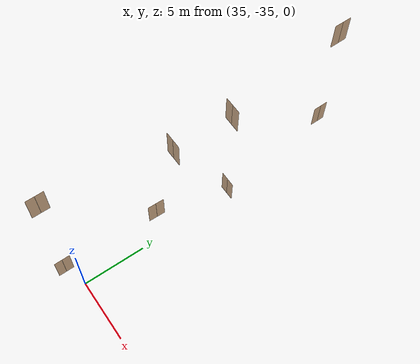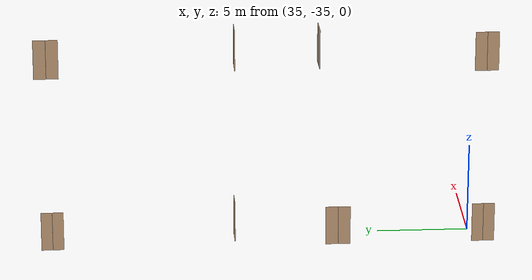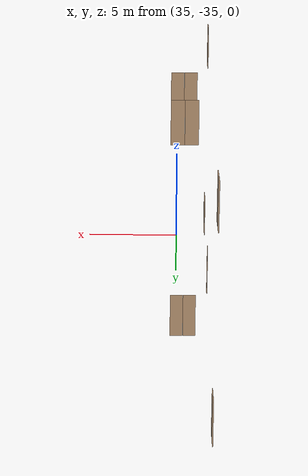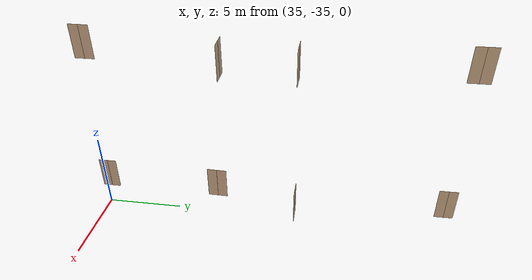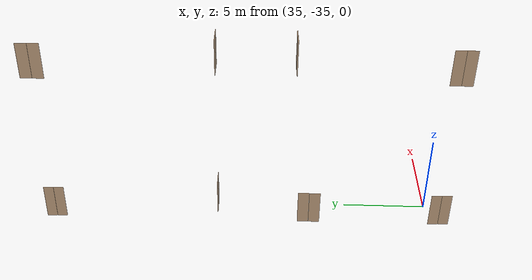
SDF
<sdf version="1.7">
 <world name="sim_world">
  <model name="door27">
   <pose>33.441785810437636 -12.070729478662258 0.0 0 0 1.587504132487737</pose>
   <link name="right">
    <pose>0.3083574587941471 0 1.11 0 0 0</pose>
    <visual name="right_visual">
     <geometry><box><size>0.6067149175882942 0.03 2.2</size></box></geometry>
     <material>
      <ambient>0.5 0.25 0 0.6</ambient>
      <diffuse>0.5 0.25 0 0.6</diffuse>
      <pbr><metal><metalness>0.0</metalness></metal></pbr>
     </material>
    </visual>
    <collision name="right_collision">
     <geometry><box><size>0.6067149175882942 0.03 2.2</size></box></geometry>
     <surface><contact><collide_bitmask>0x02</collide_bitmask></contact></surface>
    </collision>
    <inertial>
     <mass>50.0</mass>
     <inertia><ixx>20.17041666666667</ixx><iyy>21.700429130100716</iyy><izz>1.5375124634340445</izz></inertia>
    </inertial>
   </link>
   <joint name="right_joint" type="revolute">
    <parent>world</parent>
    <child>right</child>
    <axis><xyz>0 0 -1</xyz><limit><lower>0</lower><upper>1.57</upper></limit></axis>
    <pose>0.3083574587941471 0 0 0 0 0</pose>
   </joint>
   <link name="left">
    <pose>-0.3083574587941471 0 1.11 0 0 0</pose>
    <visual name="left_visual">
     <geometry><box><size>0.6067149175882942 0.03 2.2</size></box></geometry>
     <material>
      <ambient>0.5 0.25 0 0.6</ambient>
      <diffuse>0.5 0.25 0 0.6</diffuse>
      <pbr><metal><metalness>0.0</metalness></metal></pbr>
     </material>
    </visual>
    <collision name="left_collision">
     <geometry><box><size>0.6067149175882942 0.03 2.2</size></box></geometry>
     <surface><contact><collide_bitmask>0x02</collide_bitmask></contact></surface>
    </collision>
    <inertial>
     <mass>50.0</mass>
     <inertia><ixx>20.17041666666667</ixx><iyy>21.700429130100716</iyy><izz>1.5375124634340445</izz></inertia>
    </inertial>
   </link>
   <joint name="left_joint" type="revolute">
    <parent>world</parent>
    <child>left</child>
    <axis><xyz>0 0 -1</xyz><limit><lower>-1.57</lower><upper>0</upper></limit></axis>
    <pose>-0.3083574587941471 0 0 0 0 0</pose>
   </joint>
   <plugin name="register_component" filename="libregister_component.so">
    <component name="Door">
     <v_max_door>0.5</v_max_door>
     <a_max_door>0.3</a_max_door>
     <a_nom_door>0.15</a_nom_door>
     <dx_min_door>0.01</dx_min_door>
     <f_max_door>500.0</f_max_door>
     <ros_interface>true</ros_interface>
     <door name="door27" type="DoubleSwingDoor" left_joint_name="left_joint" right_joint_name="right_joint"/>
    </component>
   </plugin>
  </model>
  <model name="door29">
   <pose>34.68749171236378 -22.057737200573676 0.0 0 0 -3.131959881835861</pose>
   <link name="right">
    <pose>0.3151762883514032 0 1.11 0 0 0</pose>
    <visual name="right_visual">
     <geometry><box><size>0.6203525767028064 0.03 2.2</size></box></geometry>
     <material>
      <ambient>0.5 0.25 0 0.6</ambient>
      <diffuse>0.5 0.25 0 0.6</diffuse>
      <pbr><metal><metalness>0.0</metalness></metal></pbr>
     </material>
    </visual>
    <collision name="right_collision">
     <geometry><box><size>0.6203525767028064 0.03 2.2</size></box></geometry>
     <surface><contact><collide_bitmask>0x02</collide_bitmask></contact></surface>
    </collision>
    <inertial>
     <mass>50.0</mass>
     <inertia><ixx>20.17041666666667</ixx><iyy>21.77015549759089</iyy><izz>1.607238830924214</izz></inertia>
    </inertial>
   </link>
   <joint name="right_joint" type="revolute">
    <parent>world</parent>
    <child>right</child>
    <axis><xyz>0 0 -1</xyz><limit><lower>0</lower><upper>1.57</upper></limit></axis>
    <pose>0.3151762883514032 0 0 0 0 0</pose>
   </joint>
   <link name="left">
    <pose>-0.3151762883514032 0 1.11 0 0 0</pose>
    <visual name="left_visual">
     <geometry><box><size>0.6203525767028064 0.03 2.2</size></box></geometry>
     <material>
      <ambient>0.5 0.25 0 0.6</ambient>
      <diffuse>0.5 0.25 0 0.6</diffuse>
      <pbr><metal><metalness>0.0</metalness></metal></pbr>
     </material>
    </visual>
    <collision name="left_collision">
     <geometry><box><size>0.6203525767028064 0.03 2.2</size></box></geometry>
     <surface><contact><collide_bitmask>0x02</collide_bitmask></contact></surface>
    </collision>
    <inertial>
     <mass>50.0</mass>
     <inertia><ixx>20.17041666666667</ixx><iyy>21.77015549759089</iyy><izz>1.607238830924214</izz></inertia>
    </inertial>
   </link>
   <joint name="left_joint" type="revolute">
    <parent>world</parent>
    <child>left</child>
    <axis><xyz>0 0 -1</xyz><limit><lower>-1.57</lower><upper>0</upper></limit></axis>
    <pose>-0.3151762883514032 0 0 0 0 0</pose>
   </joint>
   <plugin name="register_component" filename="libregister_component.so">
    <component name="Door">
     <v_max_door>0.5</v_max_door>
     <a_max_door>0.3</a_max_door>
     <a_nom_door>0.15</a_nom_door>
     <dx_min_door>0.01</dx_min_door>
     <f_max_door>500.0</f_max_door>
     <ros_interface>true</ros_interface>
     <door name="door29" type="DoubleSwingDoor" left_joint_name="left_joint" right_joint_name="right_joint"/>
    </component>
   </plugin>
  </model>
  <model name="door31">
   <pose>33.37429878277079 -27.67185507202123 0.0 0 0 1.5524595629320217</pose>
   <link name="right">
    <pose>0.3390572231146725 0 1.11 0 0 0</pose>
    <visual name="right_visual">
     <geometry><box><size>0.668114446229345 0.03 2.2</size></box></geometry>
     <material>
      <ambient>0.5 0.25 0 0.6</ambient>
      <diffuse>0.5 0.25 0 0.6</diffuse>
      <pbr><metal><metalness>0.0</metalness></metal></pbr>
     </material>
    </visual>
    <collision name="right_collision">
     <geometry><box><size>0.668114446229345 0.03 2.2</size></box></geometry>
     <surface><contact><collide_bitmask>0x02</collide_bitmask></contact></surface>
    </collision>
    <inertial>
     <mass>50.0</mass>
     <inertia><ixx>20.17041666666667</ixx><iyy>22.026570471918106</iyy><izz>1.8636538052514349</izz></inertia>
    </inertial>
   </link>
   <joint name="right_joint" type="revolute">
    <parent>world</parent>
    <child>right</child>
    <axis><xyz>0 0 -1</xyz><limit><lower>0</lower><upper>1.57</upper></limit></axis>
    <pose>0.3390572231146725 0 0 0 0 0</pose>
   </joint>
   <link name="left">
    <pose>-0.3390572231146725 0 1.11 0 0 0</pose>
    <visual name="left_visual">
     <geometry><box><size>0.668114446229345 0.03 2.2</size></box></geometry>
     <material>
      <ambient>0.5 0.25 0 0.6</ambient>
      <diffuse>0.5 0.25 0 0.6</diffuse>
      <pbr><metal><metalness>0.0</metalness></metal></pbr>
     </material>
    </visual>
    <collision name="left_collision">
     <geometry><box><size>0.668114446229345 0.03 2.2</size></box></geometry>
     <surface><contact><collide_bitmask>0x02</collide_bitmask></contact></surface>
    </collision>
    <inertial>
     <mass>50.0</mass>
     <inertia><ixx>20.17041666666667</ixx><iyy>22.026570471918106</iyy><izz>1.8636538052514349</izz></inertia>
    </inertial>
   </link>
   <joint name="left_joint" type="revolute">
    <parent>world</parent>
    <child>left</child>
    <axis><xyz>0 0 -1</xyz><limit><lower>-1.57</lower><upper>0</upper></limit></axis>
    <pose>-0.3390572231146725 0 0 0 0 0</pose>
   </joint>
   <plugin name="register_component" filename="libregister_component.so">
    <component name="Door">
     <v_max_door>0.5</v_max_door>
     <a_max_door>0.3</a_max_door>
     <a_nom_door>0.15</a_nom_door>
     <dx_min_door>0.01</dx_min_door>
     <f_max_door>500.0</f_max_door>
     <ros_interface>true</ros_interface>
     <door name="door31" type="DoubleSwingDoor" left_joint_name="left_joint" right_joint_name="right_joint"/>
    </component>
   </plugin>
  </model>
  <model name="door32">
   <pose>33.37790717226811 -35.65114908101101 0.0 0 0 1.5830044547429667</pose>
   <link name="right">
    <pose>0.3116054796662517 0 1.11 0 0 0</pose>
    <visual name="right_visual">
     <geometry><box><size>0.6132109593325034 0.03 2.2</size></box></geometry>
     <material>
      <ambient>0.5 0.25 0 0.6</ambient>
      <diffuse>0.5 0.25 0 0.6</diffuse>
      <pbr><metal><metalness>0.0</metalness></metal></pbr>
     </material>
    </visual>
    <collision name="right_collision">
     <geometry><box><size>0.6132109593325034 0.03 2.2</size></box></geometry>
     <surface><contact><collide_bitmask>0x02</collide_bitmask></contact></surface>
    </collision>
    <inertial>
     <mass>50.0</mass>
     <inertia><ixx>20.17041666666667</ixx><iyy>21.733448669356207</iyy><izz>1.570532002689538</izz></inertia>
    </inertial>
   </link>
   <joint name="right_joint" type="revolute">
    <parent>world</parent>
    <child>right</child>
    <axis><xyz>0 0 -1</xyz><limit><lower>0</lower><upper>1.57</upper></limit></axis>
    <pose>0.3116054796662517 0 0 0 0 0</pose>
   </joint>
   <link name="left">
    <pose>-0.3116054796662517 0 1.11 0 0 0</pose>
    <visual name="left_visual">
     <geometry><box><size>0.6132109593325034 0.03 2.2</size></box></geometry>
     <material>
      <ambient>0.5 0.25 0 0.6</ambient>
      <diffuse>0.5 0.25 0 0.6</diffuse>
      <pbr><metal><metalness>0.0</metalness></metal></pbr>
     </material>
    </visual>
    <collision name="left_collision">
     <geometry><box><size>0.6132109593325034 0.03 2.2</size></box></geometry>
     <surface><contact><collide_bitmask>0x02</collide_bitmask></contact></surface>
    </collision>
    <inertial>
     <mass>50.0</mass>
     <inertia><ixx>20.17041666666667</ixx><iyy>21.733448669356207</iyy><izz>1.570532002689538</izz></inertia>
    </inertial>
   </link>
   <joint name="left_joint" type="revolute">
    <parent>world</parent>
    <child>left</child>
    <axis><xyz>0 0 -1</xyz><limit><lower>-1.57</lower><upper>0</upper></limit></axis>
    <pose>-0.3116054796662517 0 0 0 0 0</pose>
   </joint>
   <plugin name="register_component" filename="libregister_component.so">
    <component name="Door">
     <v_max_door>0.5</v_max_door>
     <a_max_door>0.3</a_max_door>
     <a_nom_door>0.15</a_nom_door>
     <dx_min_door>0.01</dx_min_door>
     <f_max_door>500.0</f_max_door>
     <ros_interface>true</ros_interface>
     <door name="door32" type="DoubleSwingDoor" left_joint_name="left_joint" right_joint_name="right_joint"/>
    </component>
   </plugin>
  </model>
  <model name="N1_door20">
   <pose>33.3910146342492 -11.954818514076322 10.0 0 0 1.5908324618208738</pose>
   <link name="right">
    <pose>0.3361912140977299 0 1.11 0 0 0</pose>
    <visual name="right_visual">
     <geometry><box><size>0.6623824281954598 0.03 2.2</size></box></geometry>
     <material>
      <ambient>0.5 0.25 0 0.6</ambient>
      <diffuse>0.5 0.25 0 0.6</diffuse>
      <pbr><metal><metalness>0.0</metalness></metal></pbr>
     </material>
    </visual>
    <collision name="right_collision">
     <geometry><box><size>0.6623824281954598 0.03 2.2</size></box></geometry>
     <surface><contact><collide_bitmask>0x02</collide_bitmask></contact></surface>
    </collision>
    <inertial>
     <mass>50.0</mass>
     <inertia><ixx>20.17041666666667</ixx><iyy>21.994793671592145</iyy><izz>1.831877004925473</izz></inertia>
    </inertial>
   </link>
   <joint name="right_joint" type="revolute">
    <parent>world</parent>
    <child>right</child>
    <axis><xyz>0 0 -1</xyz><limit><lower>0</lower><upper>1.57</upper></limit></axis>
    <pose>0.3361912140977299 0 0 0 0 0</pose>
   </joint>
   <link name="left">
    <pose>-0.3361912140977299 0 1.11 0 0 0</pose>
    <visual name="left_visual">
     <geometry><box><size>0.6623824281954598 0.03 2.2</size></box></geometry>
     <material>
      <ambient>0.5 0.25 0 0.6</ambient>
      <diffuse>0.5 0.25 0 0.6</diffuse>
      <pbr><metal><metalness>0.0</metalness></metal></pbr>
     </material>
    </visual>
    <collision name="left_collision">
     <geometry><box><size>0.6623824281954598 0.03 2.2</size></box></geometry>
     <surface><contact><collide_bitmask>0x02</collide_bitmask></contact></surface>
    </collision>
    <inertial>
     <mass>50.0</mass>
     <inertia><ixx>20.17041666666667</ixx><iyy>21.994793671592145</iyy><izz>1.831877004925473</izz></inertia>
    </inertial>
   </link>
   <joint name="left_joint" type="revolute">
    <parent>world</parent>
    <child>left</child>
    <axis><xyz>0 0 -1</xyz><limit><lower>-1.57</lower><upper>0</upper></limit></axis>
    <pose>-0.3361912140977299 0 0 0 0 0</pose>
   </joint>
   <plugin name="register_component" filename="libregister_component.so">
    <component name="Door">
     <v_max_door>0.5</v_max_door>
     <a_max_door>0.3</a_max_door>
     <a_nom_door>0.15</a_nom_door>
     <dx_min_door>0.01</dx_min_door>
     <f_max_door>500.0</f_max_door>
     <ros_interface>true</ros_interface>
     <door name="N1_door20" type="DoubleSwingDoor" left_joint_name="left_joint" right_joint_name="right_joint"/>
    </component>
   </plugin>
  </model>
  <model name="N1_door22">
   <pose>34.687717486322796 -22.072256795493153 10.0 0 0 -3.1389810117286547</pose>
   <link name="right">
    <pose>0.33147173419256043 0 1.11 0 0 0</pose>
    <visual name="right_visual">
     <geometry><box><size>0.6529434683851209 0.03 2.2</size></box></geometry>
     <material>
      <ambient>0.5 0.25 0 0.6</ambient>
      <diffuse>0.5 0.25 0 0.6</diffuse>
      <pbr><metal><metalness>0.0</metalness></metal></pbr>
     </material>
    </visual>
    <collision name="right_collision">
     <geometry><box><size>0.6529434683851209 0.03 2.2</size></box></geometry>
     <surface><contact><collide_bitmask>0x02</collide_bitmask></contact></surface>
    </collision>
    <inertial>
     <mass>50.0</mass>
     <inertia><ixx>20.17041666666667</ixx><iyy>21.943063220444966</iyy><izz>1.7801465537782972</izz></inertia>
    </inertial>
   </link>
   <joint name="right_joint" type="revolute">
    <parent>world</parent>
    <child>right</child>
    <axis><xyz>0 0 -1</xyz><limit><lower>0</lower><upper>1.57</upper></limit></axis>
    <pose>0.33147173419256043 0 0 0 0 0</pose>
   </joint>
   <link name="left">
    <pose>-0.33147173419256043 0 1.11 0 0 0</pose>
    <visual name="left_visual">
     <geometry><box><size>0.6529434683851209 0.03 2.2</size></box></geometry>
     <material>
      <ambient>0.5 0.25 0 0.6</ambient>
      <diffuse>0.5 0.25 0 0.6</diffuse>
      <pbr><metal><metalness>0.0</metalness></metal></pbr>
     </material>
    </visual>
    <collision name="left_collision">
     <geometry><box><size>0.6529434683851209 0.03 2.2</size></box></geometry>
     <surface><contact><collide_bitmask>0x02</collide_bitmask></contact></surface>
    </collision>
    <inertial>
     <mass>50.0</mass>
     <inertia><ixx>20.17041666666667</ixx><iyy>21.943063220444966</iyy><izz>1.7801465537782972</izz></inertia>
    </inertial>
   </link>
   <joint name="left_joint" type="revolute">
    <parent>world</parent>
    <child>left</child>
    <axis><xyz>0 0 -1</xyz><limit><lower>-1.57</lower><upper>0</upper></limit></axis>
    <pose>-0.33147173419256043 0 0 0 0 0</pose>
   </joint>
   <plugin name="register_component" filename="libregister_component.so">
    <component name="Door">
     <v_max_door>0.5</v_max_door>
     <a_max_door>0.3</a_max_door>
     <a_nom_door>0.15</a_nom_door>
     <dx_min_door>0.01</dx_min_door>
     <f_max_door>500.0</f_max_door>
     <ros_interface>true</ros_interface>
     <door name="N1_door22" type="DoubleSwingDoor" left_joint_name="left_joint" right_joint_name="right_joint"/>
    </component>
   </plugin>
  </model>
  <model name="N1_door24">
   <pose>34.69923306310737 -26.651548734513845 10.0 0 0 -3.1164281503540927</pose>
   <link name="right">
    <pose>0.3244644359665379 0 1.11 0 0 0</pose>
    <visual name="right_visual">
     <geometry><box><size>0.6389288719330758 0.03 2.2</size></box></geometry>
     <material>
      <ambient>0.5 0.25 0 0.6</ambient>
      <diffuse>0.5 0.25 0 0.6</diffuse>
      <pbr><metal><metalness>0.0</metalness></metal></pbr>
     </material>
    </visual>
    <collision name="right_collision">
     <geometry><box><size>0.6389288719330758 0.03 2.2</size></box></geometry>
     <surface><contact><collide_bitmask>0x02</collide_bitmask></contact></surface>
    </collision>
    <inertial>
     <mass>50.0</mass>
     <inertia><ixx>20.17041666666667</ixx><iyy>21.867625430790305</iyy><izz>1.7047087641236367</izz></inertia>
    </inertial>
   </link>
   <joint name="right_joint" type="revolute">
    <parent>world</parent>
    <child>right</child>
    <axis><xyz>0 0 1</xyz><limit><lower>0</lower><upper>1.57</upper></limit></axis>
    <pose>0.3244644359665379 0 0 0 0 0</pose>
   </joint>
   <link name="left">
    <pose>-0.3244644359665379 0 1.11 0 0 0</pose>
    <visual name="left_visual">
     <geometry><box><size>0.6389288719330758 0.03 2.2</size></box></geometry>
     <material>
      <ambient>0.5 0.25 0 0.6</ambient>
      <diffuse>0.5 0.25 0 0.6</diffuse>
      <pbr><metal><metalness>0.0</metalness></metal></pbr>
     </material>
    </visual>
    <collision name="left_collision">
     <geometry><box><size>0.6389288719330758 0.03 2.2</size></box></geometry>
     <surface><contact><collide_bitmask>0x02</collide_bitmask></contact></surface>
    </collision>
    <inertial>
     <mass>50.0</mass>
     <inertia><ixx>20.17041666666667</ixx><iyy>21.867625430790305</iyy><izz>1.7047087641236367</izz></inertia>
    </inertial>
   </link>
   <joint name="left_joint" type="revolute">
    <parent>world</parent>
    <child>left</child>
    <axis><xyz>0 0 1</xyz><limit><lower>-1.57</lower><upper>0</upper></limit></axis>
    <pose>-0.3244644359665379 0 0 0 0 0</pose>
   </joint>
   <plugin name="register_component" filename="libregister_component.so">
    <component name="Door">
     <v_max_door>0.5</v_max_door>
     <a_max_door>0.3</a_max_door>
     <a_nom_door>0.15</a_nom_door>
     <dx_min_door>0.01</dx_min_door>
     <f_max_door>500.0</f_max_door>
     <ros_interface>true</ros_interface>
     <door name="N1_door24" type="DoubleSwingDoor" left_joint_name="left_joint" right_joint_name="right_joint"/>
    </component>
   </plugin>
  </model>
  <model name="N1_door26">
   <pose>33.34224610052984 -35.6193817963664 10.0 0 0 1.5777613576291543</pose>
   <link name="right">
    <pose>0.3220934529684108 0 1.11 0 0 0</pose>
    <visual name="right_visual">
     <geometry><box><size>0.6341869059368216 0.03 2.2</size></box></geometry>
     <material>
      <ambient>0.5 0.25 0 0.6</ambient>
      <diffuse>0.5 0.25 0 0.6</diffuse>
      <pbr><metal><metalness>0.0</metalness></metal></pbr>
     </material>
    </visual>
    <collision name="right_collision">
     <geometry><box><size>0.6341869059368216 0.03 2.2</size></box></geometry>
     <surface><contact><collide_bitmask>0x02</collide_bitmask></contact></surface>
    </collision>
    <inertial>
     <mass>50.0</mass>
     <inertia><ixx>20.17041666666667</ixx><iyy>21.842470965257167</iyy><izz>1.6795542985904959</izz></inertia>
    </inertial>
   </link>
   <joint name="right_joint" type="revolute">
    <parent>world</parent>
    <child>right</child>
    <axis><xyz>0 0 -1</xyz><limit><lower>0</lower><upper>1.57</upper></limit></axis>
    <pose>0.3220934529684108 0 0 0 0 0</pose>
   </joint>
   <link name="left">
    <pose>-0.3220934529684108 0 1.11 0 0 0</pose>
    <visual name="left_visual">
     <geometry><box><size>0.6341869059368216 0.03 2.2</size></box></geometry>
     <material>
      <ambient>0.5 0.25 0 0.6</ambient>
      <diffuse>0.5 0.25 0 0.6</diffuse>
      <pbr><metal><metalness>0.0</metalness></metal></pbr>
     </material>
    </visual>
    <collision name="left_collision">
     <geometry><box><size>0.6341869059368216 0.03 2.2</size></box></geometry>
     <surface><contact><collide_bitmask>0x02</collide_bitmask></contact></surface>
    </collision>
    <inertial>
     <mass>50.0</mass>
     <inertia><ixx>20.17041666666667</ixx><iyy>21.842470965257167</iyy><izz>1.6795542985904959</izz></inertia>
    </inertial>
   </link>
   <joint name="left_joint" type="revolute">
    <parent>world</parent>
    <child>left</child>
    <axis><xyz>0 0 -1</xyz><limit><lower>-1.57</lower><upper>0</upper></limit></axis>
    <pose>-0.3220934529684108 0 0 0 0 0</pose>
   </joint>
   <plugin name="register_component" filename="libregister_component.so">
    <component name="Door">
     <v_max_door>0.5</v_max_door>
     <a_max_door>0.3</a_max_door>
     <a_nom_door>0.15</a_nom_door>
     <dx_min_door>0.01</dx_min_door>
     <f_max_door>500.0</f_max_door>
     <ros_interface>true</ros_interface>
     <door name="N1_door26" type="DoubleSwingDoor" left_joint_name="left_joint" right_joint_name="right_joint"/>
    </component>
   </plugin>
  </model>
 </world>
</sdf>
